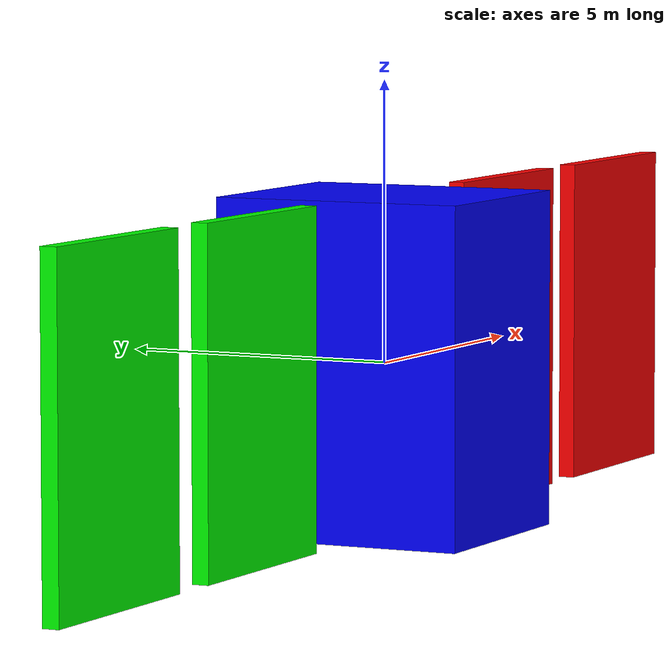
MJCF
<mujoco model="SASA">
    <compiler angle="degree" coordinate="local" inertiafromgeom="true"/>
    <option gravity="0 0 0" integrator="RK4" timestep="1e-2" />
    <worldbody>
        <body name="satellite" pos="0 0 0.0">
            <joint axis="1 0 0" damping="0.0" name="BASE_DOF" pos="0 0 0" type="free"/>
            <geom mass="500.0" pos="0 0 0" rgba="0 0 1 1" size="2 2.3 3" type="box"/>
            			<camera euler="0 0 0" fovy="60" name="rgb" pos="0 0 5.5"></camera>

            <body name="panelL0" pos="-5 0 0.0">
                <joint axis="1 0 0" stiffness="100" damping="0.0" name="panelL0_rotate_x" pos="1.5 0 0" type="hinge"/>
                <joint axis="0 1 0" stiffness="100" damping="0.0" name="panelL0_rotate_y" pos="1.5 0 0" type="hinge"/>
                <joint axis="0 0 1" stiffness="100" damping="0.0" name="panelL0_rotate_z" pos="1.5 0 0" type="hinge"/>
                <geom mass="20.0" rgba="0 1 0 1" size="2 0.15 3" type="box"/>

                <body name="panelL1" pos="-5 0 0.0">
                    <joint axis="1 0 0" stiffness="100" damping="0.0" name="panelL1_rotate_x" pos="1.5 0 0" type="hinge"/>
                    <joint axis="0 1 0" stiffness="100" damping="0.0" name="panelL1_rotate_y" pos="1.5 0 0" type="hinge"/>
                    <joint axis="0 0 1" stiffness="100" damping="0.0" name="panelL1_rotate_z" pos="1.5 0 0" type="hinge"/>
                    <geom mass="20.0" rgba="0 1 0 1" size="2 0.15 3" type="box"/>
                </body>

            </body>
            <body name="panelR0" pos="5 0 0.0">
                <joint axis="1 0 0" stiffness="100" damping="0.0" name="panelR0_rotate_x" pos="-1.5 0 0" type="hinge"/>
                <joint axis="0 1 0" stiffness="100" damping="0.0" name="panelR0_rotate_y" pos="-1.5 0 0" type="hinge"/>
                <joint axis="0 0 1" stiffness="100" damping="0.0" name="panelR0_rotate_z" pos="-1.5 0 0" type="hinge"/>
                <geom mass="20.0" rgba="1 0 0 1" size="2 0.15 3" type="box"/>

                <body name="panelR1" pos="5 0 0.0">
                    <joint axis="1 0 0" stiffness="100" damping="0.0" name="panelR1_rotate_x" pos="-1.5 0 0" type="hinge"/>
                    <joint axis="0 1 0" stiffness="100" damping="0.0" name="panelR1_rotate_y" pos="-1.5 0 0" type="hinge"/>
                    <joint axis="0 0 1" stiffness="100" damping="0.0" name="panelR1_rotate_z" pos="-1.5 0 0" type="hinge"/>
                    <geom mass="20.0" rgba="1 0 0 1" size="2 0.15 3" type="box"/>
                </body>

            </body>
        </body>
    </worldbody>
    <actuator>

        <motor gear="1 0 0 0 0 0  " joint="BASE_DOF"/>
        <motor gear="0 1 0 0 0 0  " joint="BASE_DOF"/>
        <motor gear="0 0 1 0 0 0  " joint="BASE_DOF"/>

        <motor gear="0 0 0 1 0 0 " joint="BASE_DOF"/>
        <motor gear="0 0 0 0 1 0 " joint="BASE_DOF"/>
        <motor gear="0 0 0 0 0 1 " joint="BASE_DOF"/>

        <motor gear="10000 " joint="panelL0_rotate_x"/>
        <motor gear="10000 " joint="panelL0_rotate_y"/>
        <motor gear="10000 " joint="panelL0_rotate_z"/>

        <motor gear="10000 " joint="panelL1_rotate_x"/>
        <motor gear="10000 " joint="panelL1_rotate_y"/>
        <motor gear="10000 " joint="panelL1_rotate_z"/>

        <motor gear="10000 " joint="panelR0_rotate_x"/>
        <motor gear="10000 " joint="panelR0_rotate_y"/>
        <motor gear="10000 " joint="panelR0_rotate_z"/>

        <motor gear="10000 " joint="panelR1_rotate_x"/>
        <motor gear="10000 " joint="panelR1_rotate_y"/>
        <motor gear="10000 " joint="panelR1_rotate_z"/>

    </actuator>
</mujoco>
